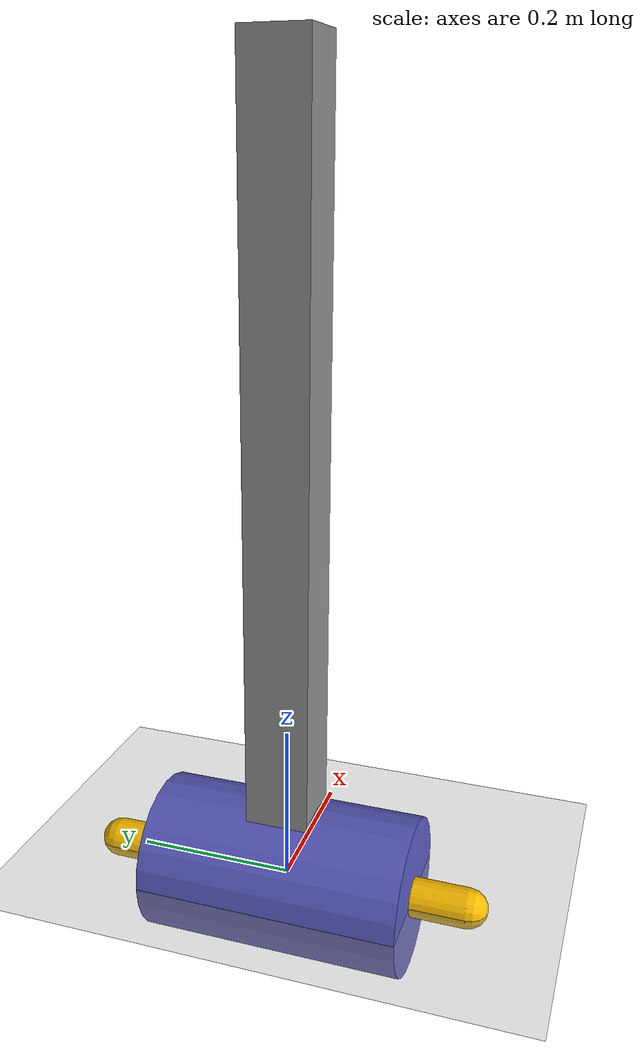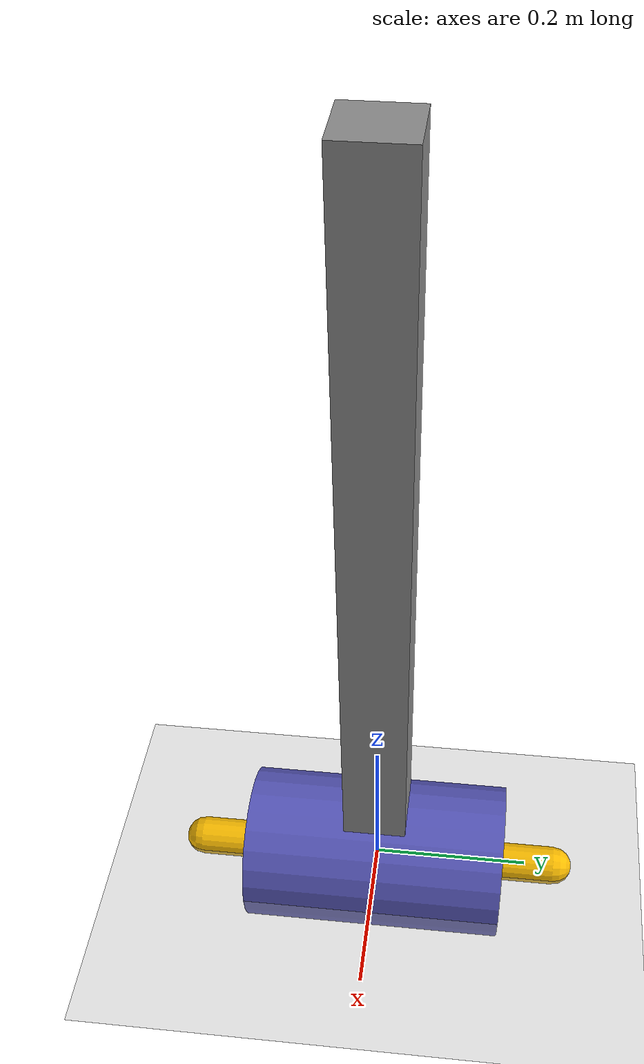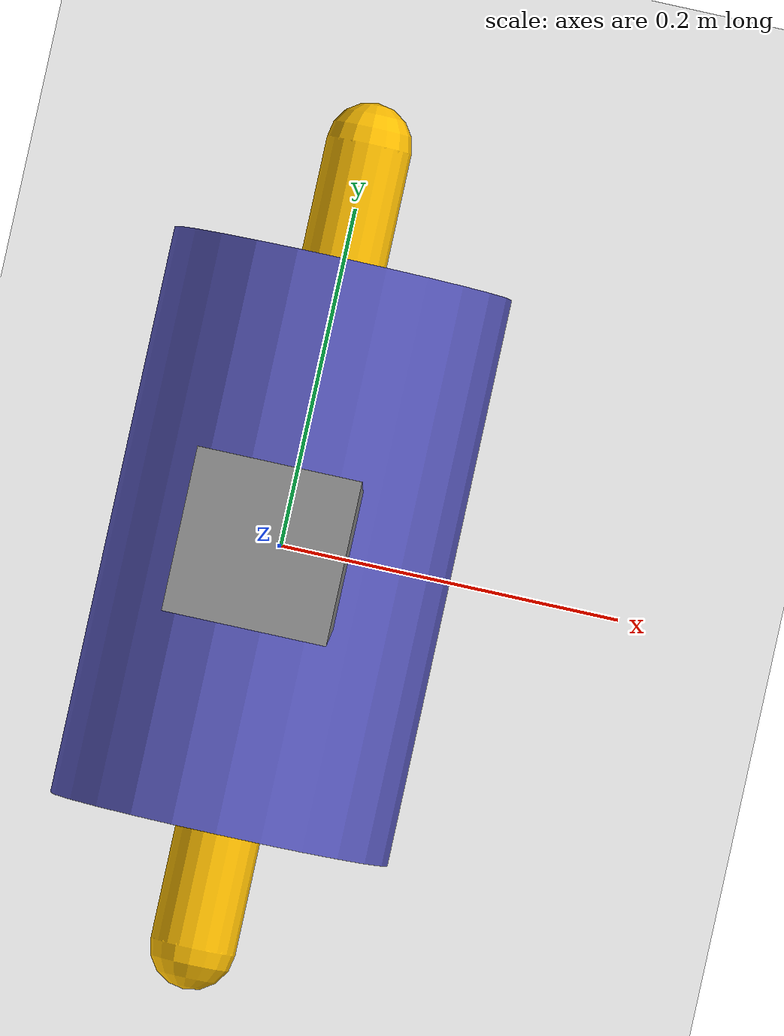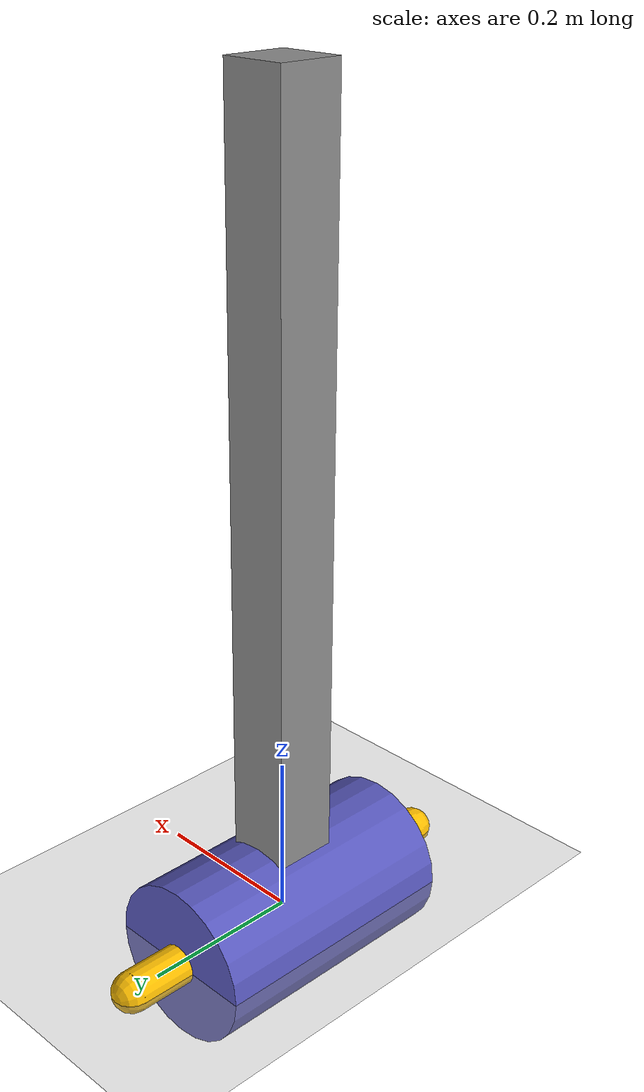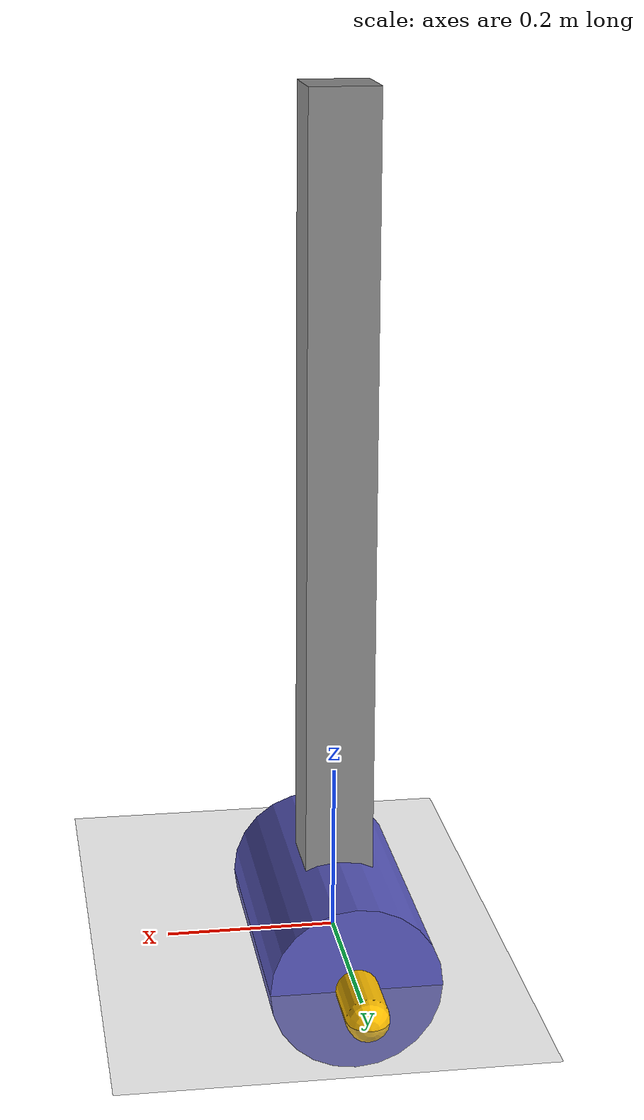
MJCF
<mujoco model="ancf_tire_testrig">
  <compiler angle="radian"/>
  <option gravity="0 0 -9.81"/>
  <default>
    <joint damping="1.0"/>
  </default>
  <worldbody>
    <light pos="0 0 4" dir="0 0 -1" diffuse="0.8 0.8 0.8"/>
    <geom name="ground" type="plane" size="20 5 0.1" rgba="0.65 0.65 0.65 1"/>

    <!-- Carrier: slides vertically. Body is 1.0 m ABOVE the spindle so the rig
         appears above the tire. Strut descends 1.0 m to the spindle centre. -->
    <body name="carrier" pos="0 0 0">
      <!-- damping=500. Vertical motion controlled by drop_motor actuator (velocity servo),
           not free-fall — matches Chrono ChLinkMotorLinearSpeed convention. -->
      <joint name="slide_z" type="slide" axis="0 0 1" damping="500"/>
      <!-- Minimal self-weight only (~10N). Full normal load applied via
           xfrc_applied in the Python example so it can be tuned at runtime. -->
      <inertial mass="1.0" pos="0 0 0" diaginertia="1 1 1"/>
      <geom name="carrier_strut" type="box" size="0.04 0.04 0.50"
            pos="0 0 0.50" rgba="0.55 0.55 0.55 1.0"
            contype="0" conaffinity="0"/>

      <!-- Chassis: same Z as carrier (physics) — avoids 1m constraint coupling -->
      <body name="chassis" pos="0 0 0">
        <joint name="slide_x" type="slide" axis="1 0 0" damping="10"/>
        <inertial mass="0.001" pos="0 0 0" diaginertia="1e-6 1e-6 1e-6"/>
        <!-- Spindle: rotates about Y. FEDA combined mass 31.88 kg required for
             stability — near-zero mass caused F/m → ∞ → NaN. -->
        <body name="spindle" pos="0 0 0">
          <joint name="spin_y" type="hinge" axis="0 1 0" damping="1.0"/>
          <inertial mass="31.88" pos="0 0 0" diaginertia="0.4639 0.6248 0.4639"/>
          <!-- Hub disc R=0.10 m (same as ancf_single_tire.xml) -->
          <geom name="hub_vis" type="cylinder" size="0.10 0.168"
                euler="1.5708 0 0" rgba="0.35 0.35 0.75 1.0"
                contype="0" conaffinity="0"/>
          <!-- Axle stub -->
          <geom name="axle_vis" type="capsule" size="0.025 0.238"
                euler="1.5708 0 0" rgba="1.0 0.75 0.0 1.0"
                contype="0" conaffinity="0"/>
        </body>
      </body>
    </body>
  </worldbody>

  <actuator>
    <velocity name="drop_motor" joint="slide_z" kv="5000"/>
    <velocity name="lin_motor"  joint="slide_x" kv="5000"/>
    <velocity name="rot_motor"  joint="spin_y"  kv="500"/>
  </actuator>
</mujoco>
